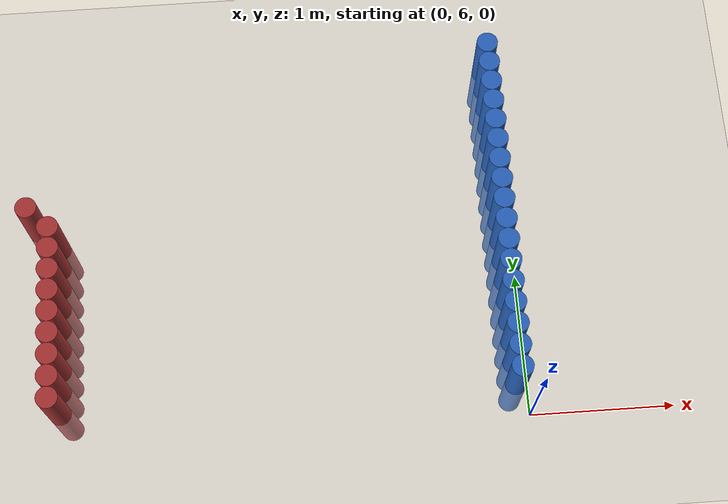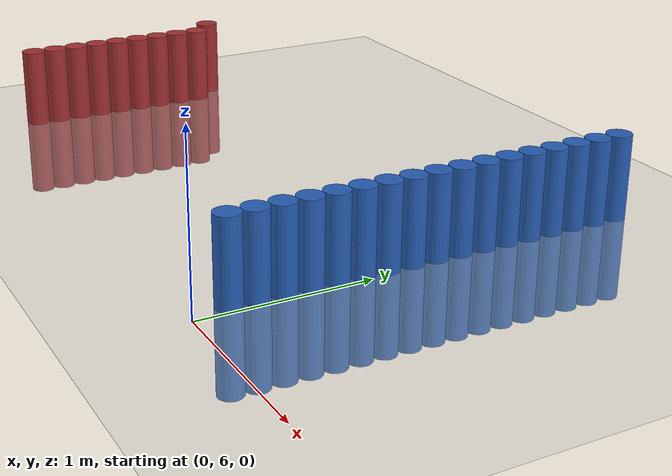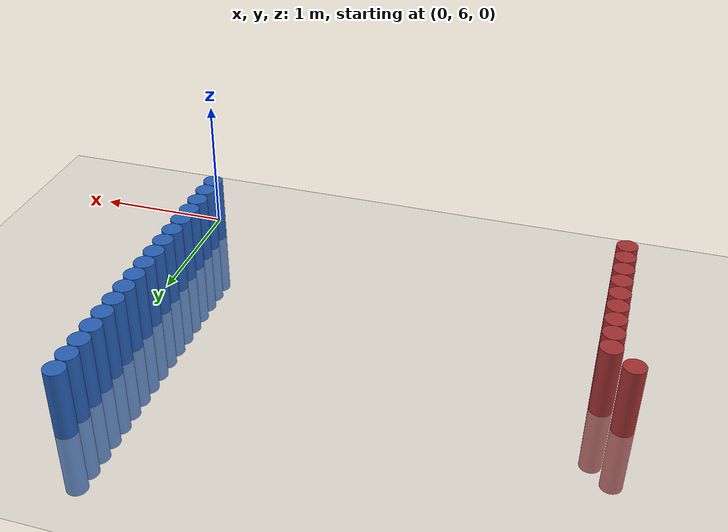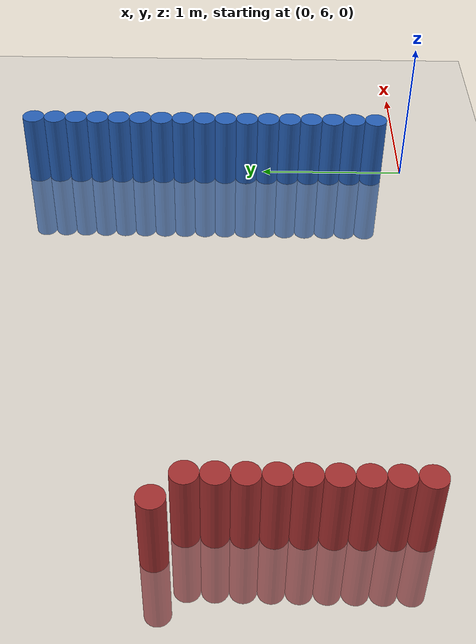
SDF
<sdf version="1.6">
 <world name="default">
  <model name="ground_plane">
   <static>1</static>
   <link name="link">
    <collision name="collision">
     <geometry><plane><normal>0 0 1</normal><size>100 100</size></plane></geometry>
     <surface><friction><ode><mu>100</mu><mu2>50</mu2></ode></friction></surface>
    </collision>
    <visual name="visual">
     <cast_shadows>0</cast_shadows>
     <geometry><plane><normal>0 0 1</normal><size>100 100</size></plane></geometry>
     <material>
      <script><uri>file://media/materials/scripts/gazebo.material</uri><name>Gazebo/Grey</name></script>
     </material>
    </visual>
   </link>
  </model>
  <model name="unit_cylinder_345">
   <static>1</static>
   <pose>-3.375000 7.575000 0.000000 0.000000 0.000000 0.000000</pose>
   <link name="link">
    <inertial>
     <mass>1</mass>
     <inertia><ixx>0.145833</ixx><ixy>0</ixy><ixz>0</ixz><iyy>0.145833</iyy><iyz>0</iyz><izz>0.125</izz></inertia>
    </inertial>
    <collision name="collision">
     <geometry><cylinder><radius>0.075000</radius><length>1</length></cylinder></geometry>
    </collision>
    <visual name="visual">
     <geometry><cylinder><radius>0.075000</radius><length>1</length></cylinder></geometry>
     <material>
      <ambient>0.648000 0.192000 0.192000 1</ambient>
      <diffuse>0.648000 0.192000 0.192000 1</diffuse>
     </material>
     <material>
      <script><name>Gazebo/Grey</name><uri>file://media/materials/scripts/gazebo.material</uri></script>
     </material>
    </visual>
   </link>
  </model>
  <model name="unit_cylinder_354">
   <static>1</static>
   <pose>-3.225000 6.225000 0.000000 0.000000 0.000000 0.000000</pose>
   <link name="link">
    <inertial>
     <mass>1</mass>
     <inertia><ixx>0.145833</ixx><ixy>0</ixy><ixz>0</ixz><iyy>0.145833</iyy><iyz>0</iyz><izz>0.125</izz></inertia>
    </inertial>
    <collision name="collision">
     <geometry><cylinder><radius>0.075000</radius><length>1</length></cylinder></geometry>
    </collision>
    <visual name="visual">
     <geometry><cylinder><radius>0.075000</radius><length>1</length></cylinder></geometry>
     <material>
      <ambient>0.648000 0.192000 0.192000 1</ambient>
      <diffuse>0.648000 0.192000 0.192000 1</diffuse>
     </material>
     <material>
      <script><name>Gazebo/Grey</name><uri>file://media/materials/scripts/gazebo.material</uri></script>
     </material>
    </visual>
   </link>
  </model>
  <model name="unit_cylinder_355">
   <static>1</static>
   <pose>-3.225000 6.375000 0.000000 0.000000 0.000000 0.000000</pose>
   <link name="link">
    <inertial>
     <mass>1</mass>
     <inertia><ixx>0.145833</ixx><ixy>0</ixy><ixz>0</ixz><iyy>0.145833</iyy><iyz>0</iyz><izz>0.125</izz></inertia>
    </inertial>
    <collision name="collision">
     <geometry><cylinder><radius>0.075000</radius><length>1</length></cylinder></geometry>
    </collision>
    <visual name="visual">
     <geometry><cylinder><radius>0.075000</radius><length>1</length></cylinder></geometry>
     <material>
      <ambient>0.648000 0.192000 0.192000 1</ambient>
      <diffuse>0.648000 0.192000 0.192000 1</diffuse>
     </material>
     <material>
      <script><name>Gazebo/Grey</name><uri>file://media/materials/scripts/gazebo.material</uri></script>
     </material>
    </visual>
   </link>
  </model>
  <model name="unit_cylinder_356">
   <static>1</static>
   <pose>-3.225000 6.525000 0.000000 0.000000 0.000000 0.000000</pose>
   <link name="link">
    <inertial>
     <mass>1</mass>
     <inertia><ixx>0.145833</ixx><ixy>0</ixy><ixz>0</ixz><iyy>0.145833</iyy><iyz>0</iyz><izz>0.125</izz></inertia>
    </inertial>
    <collision name="collision">
     <geometry><cylinder><radius>0.075000</radius><length>1</length></cylinder></geometry>
    </collision>
    <visual name="visual">
     <geometry><cylinder><radius>0.075000</radius><length>1</length></cylinder></geometry>
     <material>
      <ambient>0.648000 0.192000 0.192000 1</ambient>
      <diffuse>0.648000 0.192000 0.192000 1</diffuse>
     </material>
     <material>
      <script><name>Gazebo/Grey</name><uri>file://media/materials/scripts/gazebo.material</uri></script>
     </material>
    </visual>
   </link>
  </model>
  <model name="unit_cylinder_357">
   <static>1</static>
   <pose>-3.225000 6.675000 0.000000 0.000000 0.000000 0.000000</pose>
   <link name="link">
    <inertial>
     <mass>1</mass>
     <inertia><ixx>0.145833</ixx><ixy>0</ixy><ixz>0</ixz><iyy>0.145833</iyy><iyz>0</iyz><izz>0.125</izz></inertia>
    </inertial>
    <collision name="collision">
     <geometry><cylinder><radius>0.075000</radius><length>1</length></cylinder></geometry>
    </collision>
    <visual name="visual">
     <geometry><cylinder><radius>0.075000</radius><length>1</length></cylinder></geometry>
     <material>
      <ambient>0.648000 0.192000 0.192000 1</ambient>
      <diffuse>0.648000 0.192000 0.192000 1</diffuse>
     </material>
     <material>
      <script><name>Gazebo/Grey</name><uri>file://media/materials/scripts/gazebo.material</uri></script>
     </material>
    </visual>
   </link>
  </model>
  <model name="unit_cylinder_358">
   <static>1</static>
   <pose>-3.225000 6.825000 0.000000 0.000000 0.000000 0.000000</pose>
   <link name="link">
    <inertial>
     <mass>1</mass>
     <inertia><ixx>0.145833</ixx><ixy>0</ixy><ixz>0</ixz><iyy>0.145833</iyy><iyz>0</iyz><izz>0.125</izz></inertia>
    </inertial>
    <collision name="collision">
     <geometry><cylinder><radius>0.075000</radius><length>1</length></cylinder></geometry>
    </collision>
    <visual name="visual">
     <geometry><cylinder><radius>0.075000</radius><length>1</length></cylinder></geometry>
     <material>
      <ambient>0.648000 0.192000 0.192000 1</ambient>
      <diffuse>0.648000 0.192000 0.192000 1</diffuse>
     </material>
     <material>
      <script><name>Gazebo/Grey</name><uri>file://media/materials/scripts/gazebo.material</uri></script>
     </material>
    </visual>
   </link>
  </model>
  <model name="unit_cylinder_359">
   <static>1</static>
   <pose>-3.225000 6.975000 0.000000 0.000000 0.000000 0.000000</pose>
   <link name="link">
    <inertial>
     <mass>1</mass>
     <inertia><ixx>0.145833</ixx><ixy>0</ixy><ixz>0</ixz><iyy>0.145833</iyy><iyz>0</iyz><izz>0.125</izz></inertia>
    </inertial>
    <collision name="collision">
     <geometry><cylinder><radius>0.075000</radius><length>1</length></cylinder></geometry>
    </collision>
    <visual name="visual">
     <geometry><cylinder><radius>0.075000</radius><length>1</length></cylinder></geometry>
     <material>
      <ambient>0.648000 0.192000 0.192000 1</ambient>
      <diffuse>0.648000 0.192000 0.192000 1</diffuse>
     </material>
     <material>
      <script><name>Gazebo/Grey</name><uri>file://media/materials/scripts/gazebo.material</uri></script>
     </material>
    </visual>
   </link>
  </model>
  <model name="unit_cylinder_360">
   <static>1</static>
   <pose>-3.225000 7.125000 0.000000 0.000000 0.000000 0.000000</pose>
   <link name="link">
    <inertial>
     <mass>1</mass>
     <inertia><ixx>0.145833</ixx><ixy>0</ixy><ixz>0</ixz><iyy>0.145833</iyy><iyz>0</iyz><izz>0.125</izz></inertia>
    </inertial>
    <collision name="collision">
     <geometry><cylinder><radius>0.075000</radius><length>1</length></cylinder></geometry>
    </collision>
    <visual name="visual">
     <geometry><cylinder><radius>0.075000</radius><length>1</length></cylinder></geometry>
     <material>
      <ambient>0.648000 0.192000 0.192000 1</ambient>
      <diffuse>0.648000 0.192000 0.192000 1</diffuse>
     </material>
     <material>
      <script><name>Gazebo/Grey</name><uri>file://media/materials/scripts/gazebo.material</uri></script>
     </material>
    </visual>
   </link>
  </model>
  <model name="unit_cylinder_361">
   <static>1</static>
   <pose>-3.225000 7.275000 0.000000 0.000000 0.000000 0.000000</pose>
   <link name="link">
    <inertial>
     <mass>1</mass>
     <inertia><ixx>0.145833</ixx><ixy>0</ixy><ixz>0</ixz><iyy>0.145833</iyy><iyz>0</iyz><izz>0.125</izz></inertia>
    </inertial>
    <collision name="collision">
     <geometry><cylinder><radius>0.075000</radius><length>1</length></cylinder></geometry>
    </collision>
    <visual name="visual">
     <geometry><cylinder><radius>0.075000</radius><length>1</length></cylinder></geometry>
     <material>
      <ambient>0.648000 0.192000 0.192000 1</ambient>
      <diffuse>0.648000 0.192000 0.192000 1</diffuse>
     </material>
     <material>
      <script><name>Gazebo/Grey</name><uri>file://media/materials/scripts/gazebo.material</uri></script>
     </material>
    </visual>
   </link>
  </model>
  <model name="unit_cylinder_362">
   <static>1</static>
   <pose>-3.225000 7.425000 0.000000 0.000000 0.000000 0.000000</pose>
   <link name="link">
    <inertial>
     <mass>1</mass>
     <inertia><ixx>0.145833</ixx><ixy>0</ixy><ixz>0</ixz><iyy>0.145833</iyy><iyz>0</iyz><izz>0.125</izz></inertia>
    </inertial>
    <collision name="collision">
     <geometry><cylinder><radius>0.075000</radius><length>1</length></cylinder></geometry>
    </collision>
    <visual name="visual">
     <geometry><cylinder><radius>0.075000</radius><length>1</length></cylinder></geometry>
     <material>
      <ambient>0.648000 0.192000 0.192000 1</ambient>
      <diffuse>0.648000 0.192000 0.192000 1</diffuse>
     </material>
     <material>
      <script><name>Gazebo/Grey</name><uri>file://media/materials/scripts/gazebo.material</uri></script>
     </material>
    </visual>
   </link>
  </model>
  <model name="unit_cylinder_411">
   <static>1</static>
   <pose>-0.075000 6.225000 0.000000 0.000000 0.000000 0.000000</pose>
   <link name="link">
    <inertial>
     <mass>1</mass>
     <inertia><ixx>0.145833</ixx><ixy>0</ixy><ixz>0</ixz><iyy>0.145833</iyy><iyz>0</iyz><izz>0.125</izz></inertia>
    </inertial>
    <collision name="collision">
     <geometry><cylinder><radius>0.075000</radius><length>1</length></cylinder></geometry>
    </collision>
    <visual name="visual">
     <geometry><cylinder><radius>0.075000</radius><length>1</length></cylinder></geometry>
     <material>
      <ambient>0.152000 0.379000 0.720000 1</ambient>
      <diffuse>0.152000 0.379000 0.720000 1</diffuse>
     </material>
     <material>
      <script><name>Gazebo/Grey</name><uri>file://media/materials/scripts/gazebo.material</uri></script>
     </material>
    </visual>
   </link>
  </model>
  <model name="unit_cylinder_412">
   <static>1</static>
   <pose>-0.075000 6.375000 0.000000 0.000000 0.000000 0.000000</pose>
   <link name="link">
    <inertial>
     <mass>1</mass>
     <inertia><ixx>0.145833</ixx><ixy>0</ixy><ixz>0</ixz><iyy>0.145833</iyy><iyz>0</iyz><izz>0.125</izz></inertia>
    </inertial>
    <collision name="collision">
     <geometry><cylinder><radius>0.075000</radius><length>1</length></cylinder></geometry>
    </collision>
    <visual name="visual">
     <geometry><cylinder><radius>0.075000</radius><length>1</length></cylinder></geometry>
     <material>
      <ambient>0.152000 0.379000 0.720000 1</ambient>
      <diffuse>0.152000 0.379000 0.720000 1</diffuse>
     </material>
     <material>
      <script><name>Gazebo/Grey</name><uri>file://media/materials/scripts/gazebo.material</uri></script>
     </material>
    </visual>
   </link>
  </model>
  <model name="unit_cylinder_413">
   <static>1</static>
   <pose>-0.075000 6.525000 0.000000 0.000000 0.000000 0.000000</pose>
   <link name="link">
    <inertial>
     <mass>1</mass>
     <inertia><ixx>0.145833</ixx><ixy>0</ixy><ixz>0</ixz><iyy>0.145833</iyy><iyz>0</iyz><izz>0.125</izz></inertia>
    </inertial>
    <collision name="collision">
     <geometry><cylinder><radius>0.075000</radius><length>1</length></cylinder></geometry>
    </collision>
    <visual name="visual">
     <geometry><cylinder><radius>0.075000</radius><length>1</length></cylinder></geometry>
     <material>
      <ambient>0.152000 0.379000 0.720000 1</ambient>
      <diffuse>0.152000 0.379000 0.720000 1</diffuse>
     </material>
     <material>
      <script><name>Gazebo/Grey</name><uri>file://media/materials/scripts/gazebo.material</uri></script>
     </material>
    </visual>
   </link>
  </model>
  <model name="unit_cylinder_414">
   <static>1</static>
   <pose>-0.075000 6.675000 0.000000 0.000000 0.000000 0.000000</pose>
   <link name="link">
    <inertial>
     <mass>1</mass>
     <inertia><ixx>0.145833</ixx><ixy>0</ixy><ixz>0</ixz><iyy>0.145833</iyy><iyz>0</iyz><izz>0.125</izz></inertia>
    </inertial>
    <collision name="collision">
     <geometry><cylinder><radius>0.075000</radius><length>1</length></cylinder></geometry>
    </collision>
    <visual name="visual">
     <geometry><cylinder><radius>0.075000</radius><length>1</length></cylinder></geometry>
     <material>
      <ambient>0.152000 0.379000 0.720000 1</ambient>
      <diffuse>0.152000 0.379000 0.720000 1</diffuse>
     </material>
     <material>
      <script><name>Gazebo/Grey</name><uri>file://media/materials/scripts/gazebo.material</uri></script>
     </material>
    </visual>
   </link>
  </model>
  <model name="unit_cylinder_415">
   <static>1</static>
   <pose>-0.075000 6.825000 0.000000 0.000000 0.000000 0.000000</pose>
   <link name="link">
    <inertial>
     <mass>1</mass>
     <inertia><ixx>0.145833</ixx><ixy>0</ixy><ixz>0</ixz><iyy>0.145833</iyy><iyz>0</iyz><izz>0.125</izz></inertia>
    </inertial>
    <collision name="collision">
     <geometry><cylinder><radius>0.075000</radius><length>1</length></cylinder></geometry>
    </collision>
    <visual name="visual">
     <geometry><cylinder><radius>0.075000</radius><length>1</length></cylinder></geometry>
     <material>
      <ambient>0.152000 0.379000 0.720000 1</ambient>
      <diffuse>0.152000 0.379000 0.720000 1</diffuse>
     </material>
     <material>
      <script><name>Gazebo/Grey</name><uri>file://media/materials/scripts/gazebo.material</uri></script>
     </material>
    </visual>
   </link>
  </model>
  <model name="unit_cylinder_416">
   <static>1</static>
   <pose>-0.075000 6.975000 0.000000 0.000000 0.000000 0.000000</pose>
   <link name="link">
    <inertial>
     <mass>1</mass>
     <inertia><ixx>0.145833</ixx><ixy>0</ixy><ixz>0</ixz><iyy>0.145833</iyy><iyz>0</iyz><izz>0.125</izz></inertia>
    </inertial>
    <collision name="collision">
     <geometry><cylinder><radius>0.075000</radius><length>1</length></cylinder></geometry>
    </collision>
    <visual name="visual">
     <geometry><cylinder><radius>0.075000</radius><length>1</length></cylinder></geometry>
     <material>
      <ambient>0.152000 0.379000 0.720000 1</ambient>
      <diffuse>0.152000 0.379000 0.720000 1</diffuse>
     </material>
     <material>
      <script><name>Gazebo/Grey</name><uri>file://media/materials/scripts/gazebo.material</uri></script>
     </material>
    </visual>
   </link>
  </model>
  <model name="unit_cylinder_417">
   <static>1</static>
   <pose>-0.075000 7.125000 0.000000 0.000000 0.000000 0.000000</pose>
   <link name="link">
    <inertial>
     <mass>1</mass>
     <inertia><ixx>0.145833</ixx><ixy>0</ixy><ixz>0</ixz><iyy>0.145833</iyy><iyz>0</iyz><izz>0.125</izz></inertia>
    </inertial>
    <collision name="collision">
     <geometry><cylinder><radius>0.075000</radius><length>1</length></cylinder></geometry>
    </collision>
    <visual name="visual">
     <geometry><cylinder><radius>0.075000</radius><length>1</length></cylinder></geometry>
     <material>
      <ambient>0.152000 0.379000 0.720000 1</ambient>
      <diffuse>0.152000 0.379000 0.720000 1</diffuse>
     </material>
     <material>
      <script><name>Gazebo/Grey</name><uri>file://media/materials/scripts/gazebo.material</uri></script>
     </material>
    </visual>
   </link>
  </model>
  <model name="unit_cylinder_418">
   <static>1</static>
   <pose>-0.075000 7.275000 0.000000 0.000000 0.000000 0.000000</pose>
   <link name="link">
    <inertial>
     <mass>1</mass>
     <inertia><ixx>0.145833</ixx><ixy>0</ixy><ixz>0</ixz><iyy>0.145833</iyy><iyz>0</iyz><izz>0.125</izz></inertia>
    </inertial>
    <collision name="collision">
     <geometry><cylinder><radius>0.075000</radius><length>1</length></cylinder></geometry>
    </collision>
    <visual name="visual">
     <geometry><cylinder><radius>0.075000</radius><length>1</length></cylinder></geometry>
     <material>
      <ambient>0.152000 0.379000 0.720000 1</ambient>
      <diffuse>0.152000 0.379000 0.720000 1</diffuse>
     </material>
     <material>
      <script><name>Gazebo/Grey</name><uri>file://media/materials/scripts/gazebo.material</uri></script>
     </material>
    </visual>
   </link>
  </model>
  <model name="unit_cylinder_419">
   <static>1</static>
   <pose>-0.075000 7.425000 0.000000 0.000000 0.000000 0.000000</pose>
   <link name="link">
    <inertial>
     <mass>1</mass>
     <inertia><ixx>0.145833</ixx><ixy>0</ixy><ixz>0</ixz><iyy>0.145833</iyy><iyz>0</iyz><izz>0.125</izz></inertia>
    </inertial>
    <collision name="collision">
     <geometry><cylinder><radius>0.075000</radius><length>1</length></cylinder></geometry>
    </collision>
    <visual name="visual">
     <geometry><cylinder><radius>0.075000</radius><length>1</length></cylinder></geometry>
     <material>
      <ambient>0.152000 0.379000 0.720000 1</ambient>
      <diffuse>0.152000 0.379000 0.720000 1</diffuse>
     </material>
     <material>
      <script><name>Gazebo/Grey</name><uri>file://media/materials/scripts/gazebo.material</uri></script>
     </material>
    </visual>
   </link>
  </model>
  <model name="unit_cylinder_420">
   <static>1</static>
   <pose>-0.075000 7.575000 0.000000 0.000000 0.000000 0.000000</pose>
   <link name="link">
    <inertial>
     <mass>1</mass>
     <inertia><ixx>0.145833</ixx><ixy>0</ixy><ixz>0</ixz><iyy>0.145833</iyy><iyz>0</iyz><izz>0.125</izz></inertia>
    </inertial>
    <collision name="collision">
     <geometry><cylinder><radius>0.075000</radius><length>1</length></cylinder></geometry>
    </collision>
    <visual name="visual">
     <geometry><cylinder><radius>0.075000</radius><length>1</length></cylinder></geometry>
     <material>
      <ambient>0.152000 0.379000 0.720000 1</ambient>
      <diffuse>0.152000 0.379000 0.720000 1</diffuse>
     </material>
     <material>
      <script><name>Gazebo/Grey</name><uri>file://media/materials/scripts/gazebo.material</uri></script>
     </material>
    </visual>
   </link>
  </model>
  <model name="unit_cylinder_421">
   <static>1</static>
   <pose>-0.075000 7.725000 0.000000 0.000000 0.000000 0.000000</pose>
   <link name="link">
    <inertial>
     <mass>1</mass>
     <inertia><ixx>0.145833</ixx><ixy>0</ixy><ixz>0</ixz><iyy>0.145833</iyy><iyz>0</iyz><izz>0.125</izz></inertia>
    </inertial>
    <collision name="collision">
     <geometry><cylinder><radius>0.075000</radius><length>1</length></cylinder></geometry>
    </collision>
    <visual name="visual">
     <geometry><cylinder><radius>0.075000</radius><length>1</length></cylinder></geometry>
     <material>
      <ambient>0.152000 0.379000 0.720000 1</ambient>
      <diffuse>0.152000 0.379000 0.720000 1</diffuse>
     </material>
     <material>
      <script><name>Gazebo/Grey</name><uri>file://media/materials/scripts/gazebo.material</uri></script>
     </material>
    </visual>
   </link>
  </model>
  <model name="unit_cylinder_422">
   <static>1</static>
   <pose>-0.075000 7.875000 0.000000 0.000000 0.000000 0.000000</pose>
   <link name="link">
    <inertial>
     <mass>1</mass>
     <inertia><ixx>0.145833</ixx><ixy>0</ixy><ixz>0</ixz><iyy>0.145833</iyy><iyz>0</iyz><izz>0.125</izz></inertia>
    </inertial>
    <collision name="collision">
     <geometry><cylinder><radius>0.075000</radius><length>1</length></cylinder></geometry>
    </collision>
    <visual name="visual">
     <geometry><cylinder><radius>0.075000</radius><length>1</length></cylinder></geometry>
     <material>
      <ambient>0.152000 0.379000 0.720000 1</ambient>
      <diffuse>0.152000 0.379000 0.720000 1</diffuse>
     </material>
     <material>
      <script><name>Gazebo/Grey</name><uri>file://media/materials/scripts/gazebo.material</uri></script>
     </material>
    </visual>
   </link>
  </model>
  <model name="unit_cylinder_423">
   <static>1</static>
   <pose>-0.075000 8.025000 0.000000 0.000000 0.000000 0.000000</pose>
   <link name="link">
    <inertial>
     <mass>1</mass>
     <inertia><ixx>0.145833</ixx><ixy>0</ixy><ixz>0</ixz><iyy>0.145833</iyy><iyz>0</iyz><izz>0.125</izz></inertia>
    </inertial>
    <collision name="collision">
     <geometry><cylinder><radius>0.075000</radius><length>1</length></cylinder></geometry>
    </collision>
    <visual name="visual">
     <geometry><cylinder><radius>0.075000</radius><length>1</length></cylinder></geometry>
     <material>
      <ambient>0.152000 0.379000 0.720000 1</ambient>
      <diffuse>0.152000 0.379000 0.720000 1</diffuse>
     </material>
     <material>
      <script><name>Gazebo/Grey</name><uri>file://media/materials/scripts/gazebo.material</uri></script>
     </material>
    </visual>
   </link>
  </model>
  <model name="unit_cylinder_424">
   <static>1</static>
   <pose>-0.075000 8.175000 0.000000 0.000000 0.000000 0.000000</pose>
   <link name="link">
    <inertial>
     <mass>1</mass>
     <inertia><ixx>0.145833</ixx><ixy>0</ixy><ixz>0</ixz><iyy>0.145833</iyy><iyz>0</iyz><izz>0.125</izz></inertia>
    </inertial>
    <collision name="collision">
     <geometry><cylinder><radius>0.075000</radius><length>1</length></cylinder></geometry>
    </collision>
    <visual name="visual">
     <geometry><cylinder><radius>0.075000</radius><length>1</length></cylinder></geometry>
     <material>
      <ambient>0.152000 0.379000 0.720000 1</ambient>
      <diffuse>0.152000 0.379000 0.720000 1</diffuse>
     </material>
     <material>
      <script><name>Gazebo/Grey</name><uri>file://media/materials/scripts/gazebo.material</uri></script>
     </material>
    </visual>
   </link>
  </model>
  <model name="unit_cylinder_425">
   <static>1</static>
   <pose>-0.075000 8.325000 0.000000 0.000000 0.000000 0.000000</pose>
   <link name="link">
    <inertial>
     <mass>1</mass>
     <inertia><ixx>0.145833</ixx><ixy>0</ixy><ixz>0</ixz><iyy>0.145833</iyy><iyz>0</iyz><izz>0.125</izz></inertia>
    </inertial>
    <collision name="collision">
     <geometry><cylinder><radius>0.075000</radius><length>1</length></cylinder></geometry>
    </collision>
    <visual name="visual">
     <geometry><cylinder><radius>0.075000</radius><length>1</length></cylinder></geometry>
     <material>
      <ambient>0.152000 0.379000 0.720000 1</ambient>
      <diffuse>0.152000 0.379000 0.720000 1</diffuse>
     </material>
     <material>
      <script><name>Gazebo/Grey</name><uri>file://media/materials/scripts/gazebo.material</uri></script>
     </material>
    </visual>
   </link>
  </model>
  <model name="unit_cylinder_426">
   <static>1</static>
   <pose>-0.075000 8.475000 0.000000 0.000000 0.000000 0.000000</pose>
   <link name="link">
    <inertial>
     <mass>1</mass>
     <inertia><ixx>0.145833</ixx><ixy>0</ixy><ixz>0</ixz><iyy>0.145833</iyy><iyz>0</iyz><izz>0.125</izz></inertia>
    </inertial>
    <collision name="collision">
     <geometry><cylinder><radius>0.075000</radius><length>1</length></cylinder></geometry>
    </collision>
    <visual name="visual">
     <geometry><cylinder><radius>0.075000</radius><length>1</length></cylinder></geometry>
     <material>
      <ambient>0.152000 0.379000 0.720000 1</ambient>
      <diffuse>0.152000 0.379000 0.720000 1</diffuse>
     </material>
     <material>
      <script><name>Gazebo/Grey</name><uri>file://media/materials/scripts/gazebo.material</uri></script>
     </material>
    </visual>
   </link>
  </model>
  <model name="unit_cylinder_427">
   <static>1</static>
   <pose>-0.075000 8.625000 0.000000 0.000000 0.000000 0.000000</pose>
   <link name="link">
    <inertial>
     <mass>1</mass>
     <inertia><ixx>0.145833</ixx><ixy>0</ixy><ixz>0</ixz><iyy>0.145833</iyy><iyz>0</iyz><izz>0.125</izz></inertia>
    </inertial>
    <collision name="collision">
     <geometry><cylinder><radius>0.075000</radius><length>1</length></cylinder></geometry>
    </collision>
    <visual name="visual">
     <geometry><cylinder><radius>0.075000</radius><length>1</length></cylinder></geometry>
     <material>
      <ambient>0.152000 0.379000 0.720000 1</ambient>
      <diffuse>0.152000 0.379000 0.720000 1</diffuse>
     </material>
     <material>
      <script><name>Gazebo/Grey</name><uri>file://media/materials/scripts/gazebo.material</uri></script>
     </material>
    </visual>
   </link>
  </model>
 </world>
</sdf>
